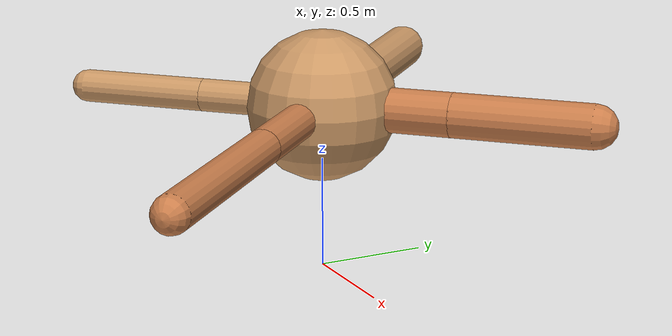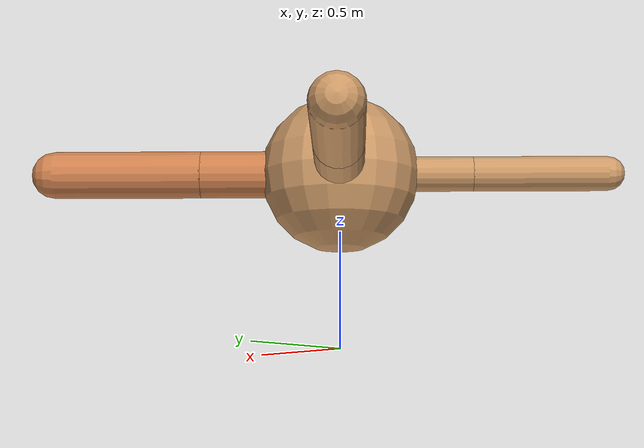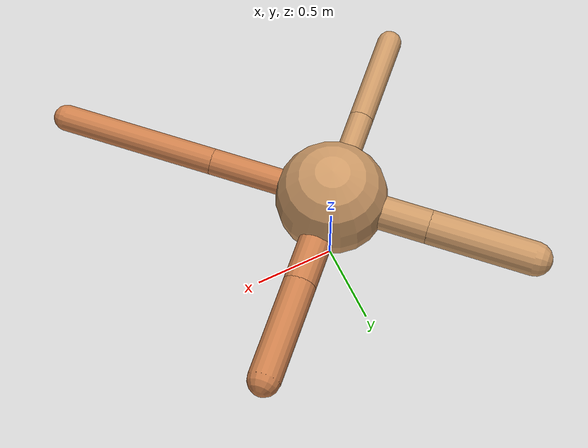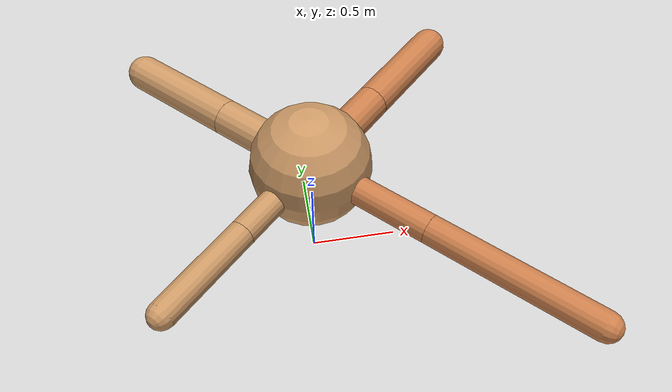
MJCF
<?xml version="1.0" ?>
<mujoco model="ant">

	<compiler angle="degree" coordinate="local" inertiafromgeom="true"/>

	<option integrator="RK4" timestep="0.01"/>

	<custom>

		<numeric data="0.0 0.0 0.55 1.0 0.0 0.0 0.0 0.0 1.0 0.0 -1.0 0.0 -1.0 0.0 1.0" name="init_qpos"/>

	</custom>

	<default>

		<joint armature="1" damping="1" limited="true"/>

		<geom conaffinity="0" condim="3" density="5.0" friction="1.5 0.1 0.1" margin="0.01" rgba="0.8 0.6 0.4 1"/>

	</default>

	<worldbody>

		<body name="torso" pos="0 0 0.75">

			<geom name="torso_geom" pos="0 0 0" size="0.33883017354493766" type="sphere"/>

			<!--joint armature="0" damping="0" limited="false" margin="0.01" name="root" pos="0 0 0" type="free"/-->

			<body name="front_left_leg" pos="0 0 0">

				<geom fromto="0 0 0 0.2 0.2 0" name="aux_1_geom" size="0.10070309116992154" type="capsule" rgba=".8 .5 .3 1"/>

				<body name="aux_1" pos="0.2 0.2 0">

					<joint axis="0 0 1" name="hip_1" pos="0.0 0.0 0.0" range="-40 40" type="hinge"/>

					<geom fromto="0 0 0 0.22293458571182453 0.22293458571182453 0" name="left_leg_geom" size="0.10070309116992154" type="capsule" rgba=".8 .5 .3 1"/>

					<body pos="0.22293458571182453 0.22293458571182453 0" name="front_left_foot">

						<joint axis="-1 1 0" name="ankle_1" pos="0.0 0.0 0.0" range="30 100" type="hinge"/>

						<geom fromto="0 0 0 0.44586917142364907 0.44586917142364907 0" name="left_ankle_geom" size="0.10070309116992154" type="capsule" rgba=".8 .5 .3 1"/>

					</body>

				</body>

			</body>

			<body name="front_right_leg" pos="0 0 0">

				<geom fromto="0 0 0 -0.2 0.2 0" name="aux_2_geom" size="0.1038034601795322" type="capsule"/>

				<body name="aux_2" pos="-0.2 0.2 0">

					<joint axis="0 0 1" name="hip_2" pos="0.0 0.0 0.0" range="-40 40" type="hinge"/>

					<geom fromto="0 0 0 -0.2302134255109242 0.2302134255109242 0" name="right_leg_geom" size="0.1038034601795322" type="capsule"/>

					<body pos="-0.2302134255109242 0.2302134255109242 0" name="front_right_foot">

						<joint axis="1 1 0" name="ankle_2" pos="0.0 0.0 0.0" range="-100 -30" type="hinge"/>

						<geom fromto="0 0 0 -0.4604268510218484 0.4604268510218484 0" name="right_ankle_geom" size="0.1038034601795322" type="capsule"/>

					</body>

				</body>

			</body>

			<body name="left_back_leg" pos="0 0 0">

				<geom fromto="0 0 0 -0.2 -0.2 0" name="aux_3_geom" size="0.07464233662190424" type="capsule"/>

				<body name="aux_3" pos="-0.2 -0.2 0">

					<joint axis="0 0 1" name="hip_3" pos="0.0 0.0 0.0" range="-40 40" type="hinge"/>

					<geom fromto="0 0 0 -0.203194675559781 -0.203194675559781 0" name="back_leg_geom" size="0.07464233662190424" type="capsule"/>

					<body pos="-0.203194675559781 -0.203194675559781 0" name="left_back_foot">

						<joint axis="-1 1 0" name="ankle_3" pos="0.0 0.0 0.0" range="-100 -30" type="hinge"/>

						<geom fromto="0 0 0 -0.406389351119562 -0.406389351119562 0" name="third_ankle_geom" size="0.07464233662190424" type="capsule"/>

					</body>

				</body>

			</body>

			<body name="right_back_leg" pos="0 0 0">

				<geom fromto="0 0 0 0.2 -0.2 0" name="aux_4_geom" size="0.07958513329618865" type="capsule" rgba=".8 .5 .3 1"/>

				<body name="aux_4" pos="0.2 -0.2 0">

					<joint axis="0 0 1" name="hip_4" pos="0.0 0.0 0.0" range="-40 40" type="hinge"/>

					<geom fromto="0 0 0 0.33469732482819947 -0.33469732482819947 0" name="rightback_leg_geom" size="0.07958513329618865" type="capsule" rgba=".8 .5 .3 1"/>

					<body pos="0.33469732482819947 -0.33469732482819947 0" name="right_back_foot">

						<joint axis="1 1 0" name="ankle_4" pos="0.0 0.0 0.0" range="30 100" type="hinge"/>

						<geom fromto="0 0 0 0.6693946496563989 -0.6693946496563989 0" name="fourth_ankle_geom" size="0.07958513329618865" type="capsule" rgba=".8 .5 .3 1"/>

					</body>

				</body>

			</body>

		</body>

	</worldbody>

	<actuator>

		<motor ctrllimited="true" ctrlrange="-1.0 1.0" joint="hip_4" gear="150"/>

		<motor ctrllimited="true" ctrlrange="-1.0 1.0" joint="ankle_4" gear="150"/>

		<motor ctrllimited="true" ctrlrange="-1.0 1.0" joint="hip_1" gear="150"/>

		<motor ctrllimited="true" ctrlrange="-1.0 1.0" joint="ankle_1" gear="150"/>

		<motor ctrllimited="true" ctrlrange="-1.0 1.0" joint="hip_2" gear="150"/>

		<motor ctrllimited="true" ctrlrange="-1.0 1.0" joint="ankle_2" gear="150"/>

		<motor ctrllimited="true" ctrlrange="-1.0 1.0" joint="hip_3" gear="150"/>

		<motor ctrllimited="true" ctrlrange="-1.0 1.0" joint="ankle_3" gear="150"/>

	</actuator>

</mujoco>
